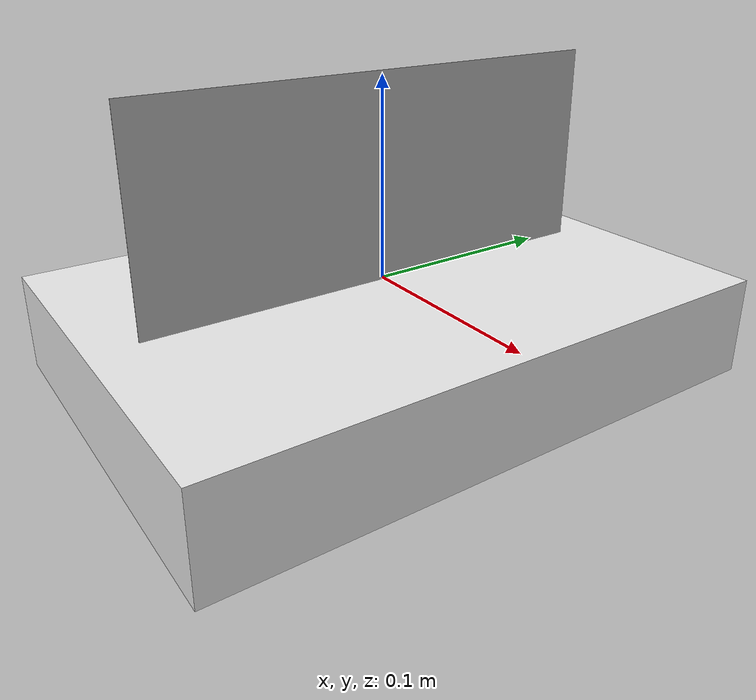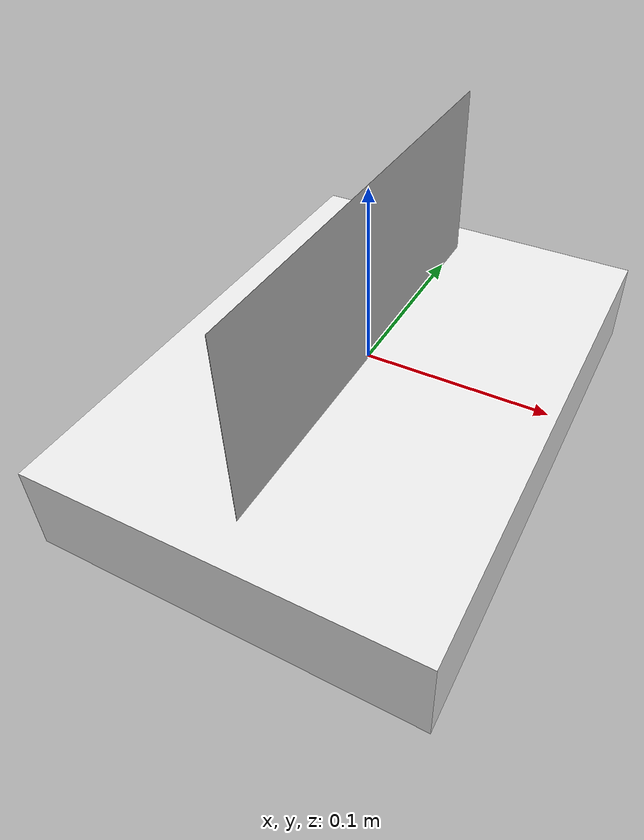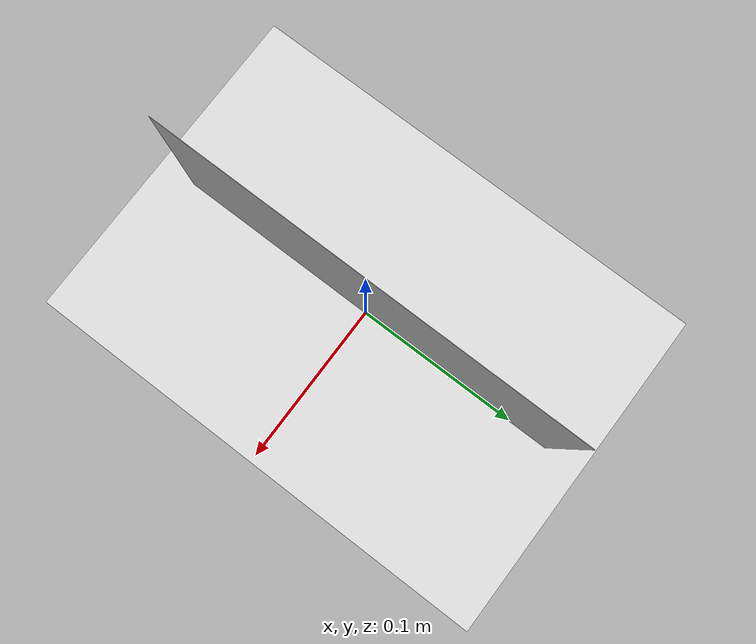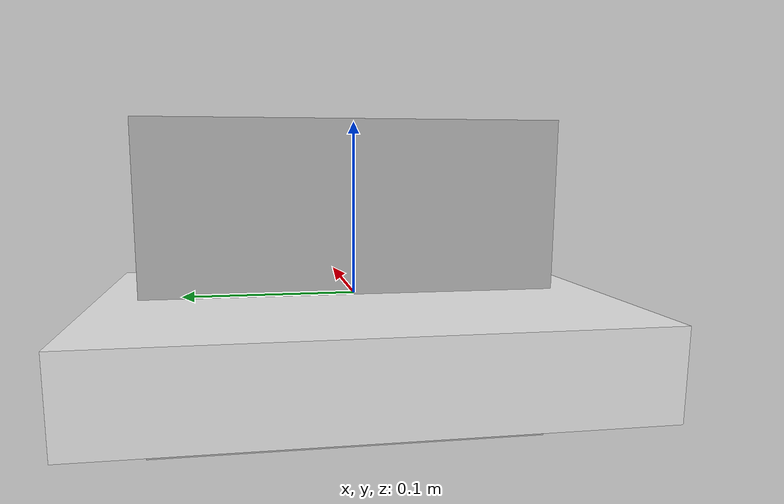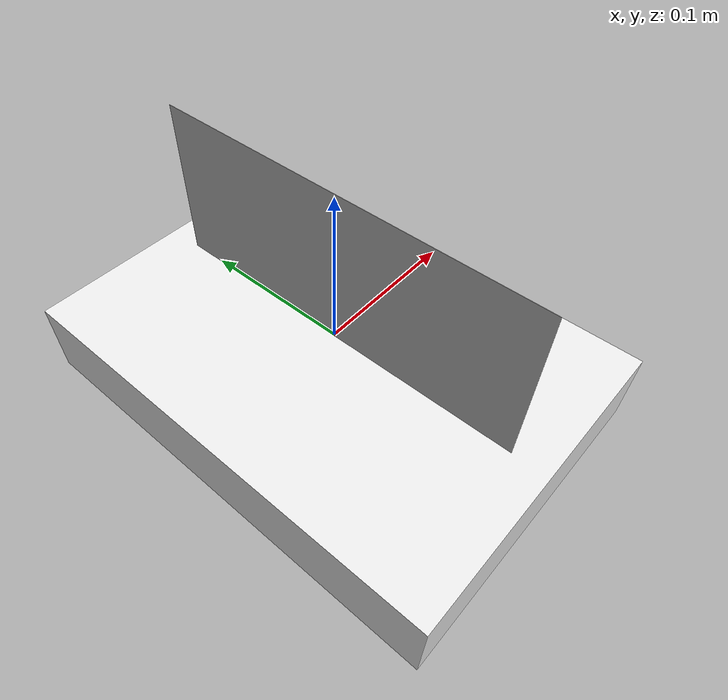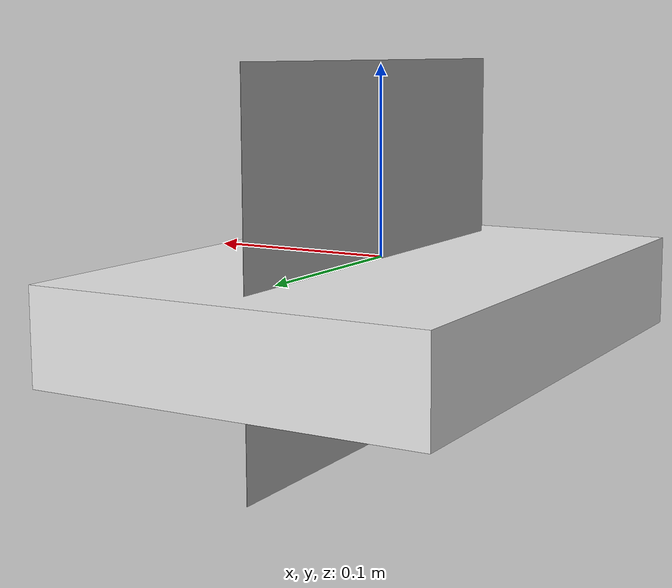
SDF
<?xml version='1.0'?>
<sdf version='1.6'>
  <model name='conditioner_off'>
    <static>1</static>

    <link name='conditioner_off_link'>
      <visual name="page_visual">
        <cast_shadows>false</cast_shadows>
        <pose>0 0 -0.026    0 0 0</pose>
        <geometry>
            <box>
              <size>0.210 0.297 0.05</size>
            </box>
        </geometry>
            <material>
                <script>
                    <uri>file://media/materials/scripts/gazebo.material</uri>
                    <name>Gazebo/White</name>
                </script>
            </material>
      </visual>

      <visual name="picture_visual">
        <cast_shadows>false</cast_shadows>
        <pose>0 0 0.002    0 0 0</pose>
        <geometry>
          <plane>
            <normal>1 0 0</normal>
            <size>0.2 0.25</size>
          </plane>
        </geometry>s
        <material>
          <script>
            <uri>model://rs_gazebo/models/ss_hq4/conditioner_off/materials/scripts</uri>
            <uri>model://rs_gazebo/models/ss_hq4/conditioner_off/materials/textures</uri>
            <name>conditioner_off</name>
          </script>
        </material>
      </visual>

    </link>
    <allow_auto_disable>1</allow_auto_disable>
  </model>
</sdf>
